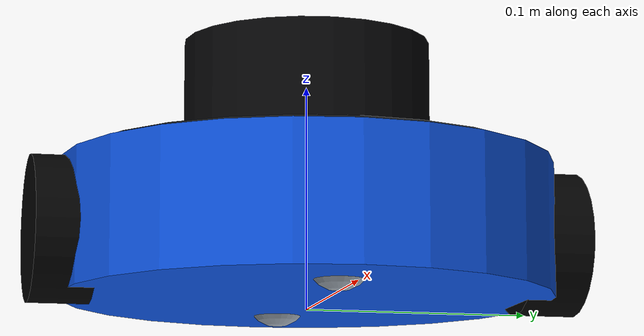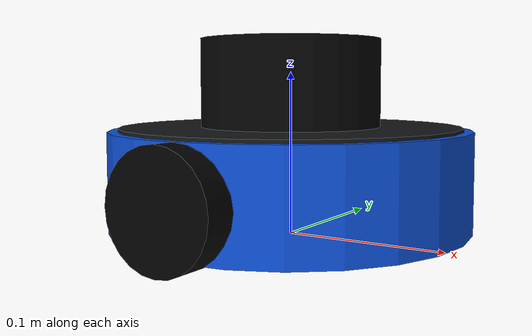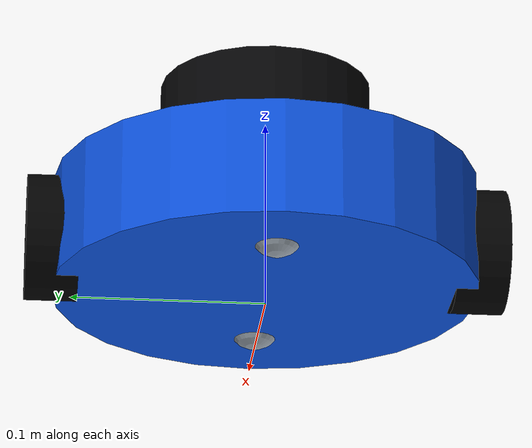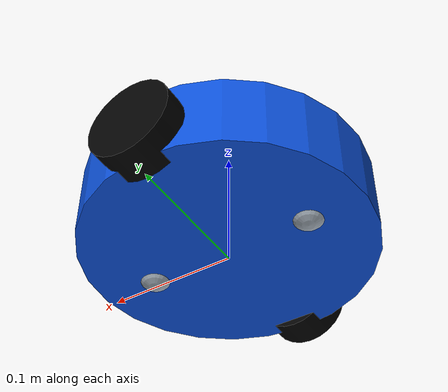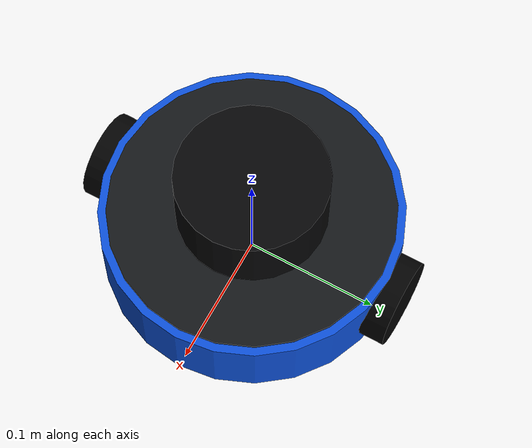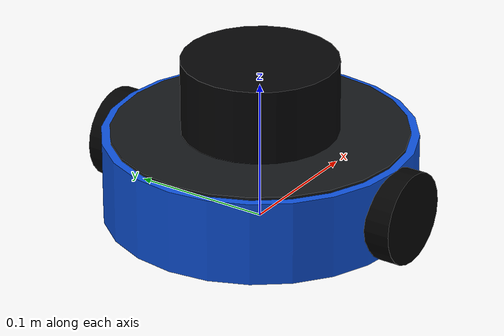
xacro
<?xml version="1.0"?>
<robot name="$(arg robot_name)" xmlns:xacro="http://www.ros.org/wiki/xacro">
  <xacro:arg name="robot_name" default="predictive_nav_robot"/>
  <xacro:arg name="robot_color" default="predictive_nav_blue"/>
  <xacro:arg name="use_gazebo_plugins" default="false"/>

  <xacro:arg name="base_radius" default="0.110"/>
  <xacro:arg name="base_height" default="0.060"/> <!-- PROVISIONAL_DESIGN_VALUE -->
  <xacro:arg name="base_ground_clearance" default="0.005"/> <!-- PROVISIONAL_DESIGN_VALUE -->
  <xacro:arg name="wheel_radius" default="0.0325"/>
  <xacro:arg name="wheel_width" default="0.027"/> <!-- REAL_ROBOT_CALIBRATION; provisional design value -->
  <xacro:arg name="wheel_separation" default="0.220"/> <!-- REAL_ROBOT_CALIBRATION; provisional design value -->
  <xacro:arg name="wheel_x" default="0.0"/> <!-- REAL_ROBOT_CALIBRATION; provisional design value -->
  <xacro:arg name="caster_ball_radius" default="0.015"/> <!-- REAL_ROBOT_CALIBRATION; provisional design value -->
  <xacro:arg name="caster_1_x" default="0.065"/> <!-- REAL_ROBOT_CALIBRATION; provisional design value -->
  <xacro:arg name="caster_1_y" default="0.0"/> <!-- REAL_ROBOT_CALIBRATION; provisional design value -->
  <xacro:arg name="caster_2_x" default="-0.065"/> <!-- REAL_ROBOT_CALIBRATION; provisional design value -->
  <xacro:arg name="caster_2_y" default="0.0"/> <!-- REAL_ROBOT_CALIBRATION; provisional design value -->
  <xacro:arg name="lidar_x" default="0.0"/> <!-- REAL_ROBOT_CALIBRATION; relative to base_link -->
  <xacro:arg name="lidar_y" default="0.0"/> <!-- REAL_ROBOT_CALIBRATION; provisional design value -->
  <!-- Center of the simple 55 mm-high LiDAR visual: its bottom rests on the deck. -->
  <xacro:arg name="lidar_z" default="0.060"/> <!-- REAL_ROBOT_CALIBRATION; provisional design value -->
  <xacro:arg name="lidar_roll" default="0.0"/> <!-- REAL_ROBOT_CALIBRATION -->
  <xacro:arg name="lidar_pitch" default="0.0"/> <!-- REAL_ROBOT_CALIBRATION -->
  <xacro:arg name="lidar_yaw" default="0.0"/> <!-- REAL_ROBOT_CALIBRATION -->
  <xacro:arg name="imu_x" default="0.0"/> <!-- REAL_ROBOT_CALIBRATION; relative to base_link -->
  <xacro:arg name="imu_y" default="0.0"/> <!-- REAL_ROBOT_CALIBRATION; provisional design value -->
  <!-- Placeholder IMU visual also rests on the deck; final IMU pose is TBD. -->
  <xacro:arg name="imu_z" default="0.045"/> <!-- REAL_ROBOT_CALIBRATION; provisional design value -->
  <xacro:arg name="imu_roll" default="0.0"/> <!-- REAL_ROBOT_CALIBRATION -->
  <xacro:arg name="imu_pitch" default="0.0"/> <!-- REAL_ROBOT_CALIBRATION -->
  <xacro:arg name="imu_yaw" default="0.0"/> <!-- REAL_ROBOT_CALIBRATION -->

  <xacro:include filename="$(find predictive_nav_description)/urdf/materials.xacro"/>
  <xacro:include filename="$(find predictive_nav_description)/urdf/inertials.xacro"/>
  <xacro:include filename="$(find predictive_nav_description)/urdf/base.xacro"/>
  <xacro:include filename="$(find predictive_nav_description)/urdf/wheels.xacro"/>
  <xacro:include filename="$(find predictive_nav_description)/urdf/sensors.xacro"/>
  <xacro:include filename="$(find predictive_nav_description)/urdf/gazebo_plugins.xacro"/>

  <xacro:predictive_nav_base
    robot_color="$(arg robot_color)"
    base_radius="$(arg base_radius)"
    base_height="$(arg base_height)"
    base_ground_clearance="$(arg base_ground_clearance)"
    base_link_z="$(arg wheel_radius)"/>
  <xacro:predictive_nav_wheels
    wheel_radius="$(arg wheel_radius)"
    wheel_width="$(arg wheel_width)"
    wheel_separation="$(arg wheel_separation)"
    wheel_x="$(arg wheel_x)"
    caster_ball_radius="$(arg caster_ball_radius)"
    caster_1_x="$(arg caster_1_x)" caster_1_y="$(arg caster_1_y)"
    caster_2_x="$(arg caster_2_x)" caster_2_y="$(arg caster_2_y)"/>
  <xacro:predictive_nav_lidar
    x="$(arg lidar_x)" y="$(arg lidar_y)" z="$(arg lidar_z)"
    roll="$(arg lidar_roll)" pitch="$(arg lidar_pitch)" yaw="$(arg lidar_yaw)"/>
  <xacro:predictive_nav_imu
    x="$(arg imu_x)" y="$(arg imu_y)" z="$(arg imu_z)"
    roll="$(arg imu_roll)" pitch="$(arg imu_pitch)" yaw="$(arg imu_yaw)"/>

  <xacro:if value="$(arg use_gazebo_plugins)">
    <xacro:predictive_nav_gazebo_plugins
      topic_prefix="$(arg robot_name)"
      wheel_separation="$(arg wheel_separation)"
      wheel_radius="$(arg wheel_radius)"/>
  </xacro:if>
</robot>

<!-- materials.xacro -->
<robot xmlns:xacro="http://www.ros.org/wiki/xacro">
  <material name="predictive_nav_dark_grey">
    <color rgba="0.08 0.09 0.10 1.0"/>
  </material>

  <material name="predictive_nav_light_grey">
    <color rgba="0.62 0.66 0.70 1.0"/>
  </material>

  <material name="predictive_nav_black">
    <color rgba="0.01 0.01 0.01 1.0"/>
  </material>

  <material name="predictive_nav_white">
    <color rgba="0.92 0.94 0.96 1.0"/>
  </material>

  <material name="predictive_nav_blue">
    <color rgba="0.05 0.32 0.86 1.0"/>
  </material>

  <material name="predictive_nav_orange">
    <color rgba="0.95 0.42 0.08 1.0"/>
  </material>

  <material name="predictive_nav_green">
    <color rgba="0.05 0.65 0.36 1.0"/>
  </material>

  <material name="predictive_nav_lidar">
    <color rgba="0.02 0.02 0.025 1.0"/>
  </material>

  <material name="predictive_nav_glass">
    <color rgba="0.1 0.18 0.25 0.55"/>
  </material>
</robot>

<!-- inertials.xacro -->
<robot xmlns:xacro="http://www.ros.org/wiki/xacro">
  <xacro:macro name="predictive_nav_box_inertia" params="mass x y z">
    <inertial>
      <mass value="${mass}"/>
      <inertia
        ixx="${mass * (y * y + z * z) / 12.0}"
        ixy="0.0"
        ixz="0.0"
        iyy="${mass * (x * x + z * z) / 12.0}"
        iyz="0.0"
        izz="${mass * (x * x + y * y) / 12.0}"/>
    </inertial>
  </xacro:macro>

  <xacro:macro name="predictive_nav_cylinder_inertia_z" params="mass radius length">
    <inertial>
      <mass value="${mass}"/>
      <inertia
        ixx="${mass * (3.0 * radius * radius + length * length) / 12.0}"
        ixy="0.0"
        ixz="0.0"
        iyy="${mass * (3.0 * radius * radius + length * length) / 12.0}"
        iyz="0.0"
        izz="${mass * radius * radius / 2.0}"/>
    </inertial>
  </xacro:macro>

  <xacro:macro name="predictive_nav_cylinder_inertia_x" params="mass radius length">
    <inertial>
      <mass value="${mass}"/>
      <inertia
        ixx="${mass * radius * radius / 2.0}"
        ixy="0.0"
        ixz="0.0"
        iyy="${mass * (3.0 * radius * radius + length * length) / 12.0}"
        iyz="0.0"
        izz="${mass * (3.0 * radius * radius + length * length) / 12.0}"/>
    </inertial>
  </xacro:macro>
</robot>

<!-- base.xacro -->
<robot xmlns:xacro="http://www.ros.org/wiki/xacro">
  <xacro:macro name="predictive_nav_base" params="robot_color:=predictive_nav_blue base_radius:=0.110 base_height:=0.060 base_ground_clearance:=0.005 base_link_z:=0.0325">
    <link name="base_footprint"/>

    <joint name="base_footprint_joint" type="fixed">
      <parent link="base_footprint"/>
      <child link="base_link"/>
      <!-- base_footprint is the ground-plane centre; base_link is the wheel axle plane. -->
      <origin xyz="0 0 ${base_link_z}" rpy="0 0 0"/>
    </joint>

    <link name="base_link">
      <visual>
        <origin xyz="0 0 ${base_ground_clearance + base_height / 2.0 - base_link_z}" rpy="0 0 0"/>
        <geometry>
          <cylinder radius="${base_radius}" length="${base_height}"/>
        </geometry>
        <material name="${robot_color}"/>
      </visual>
      <collision>
        <origin xyz="0 0 ${base_ground_clearance + base_height / 2.0 - base_link_z}" rpy="0 0 0"/>
        <geometry>
          <!-- Simple circular collision body: appropriate for Nav2/Gazebo, not a CAD model. -->
          <cylinder radius="${base_radius}" length="${base_height}"/>
        </geometry>
      </collision>
      <!-- PROVISIONAL_DESIGN_VALUE: update mass/inertia after the robot is weighed. -->
      <xacro:predictive_nav_cylinder_inertia_z mass="4.0" radius="${base_radius}" length="${base_height}"/>
    </link>

    <link name="top_deck_link">
      <visual>
        <origin xyz="0 0 0" rpy="0 0 0"/>
        <geometry>
          <cylinder radius="${base_radius - 0.006}" length="0.004"/>
        </geometry>
        <material name="predictive_nav_dark_grey"/>
      </visual>
      <!-- Deck/electronics are visual-only so they do not enlarge collision or Nav2 footprint. -->
      <xacro:predictive_nav_cylinder_inertia_z mass="0.15" radius="${base_radius - 0.006}" length="0.004"/>
    </link>

    <joint name="top_deck_joint" type="fixed">
      <parent link="base_link"/>
      <child link="top_deck_link"/>
      <origin xyz="0 0 ${base_ground_clearance + base_height - base_link_z}" rpy="0 0 0"/>
    </joint>
  </xacro:macro>
</robot>

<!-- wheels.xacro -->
<robot xmlns:xacro="http://www.ros.org/wiki/xacro">
  <xacro:macro name="predictive_nav_wheels" params="wheel_radius:=0.0325 wheel_width:=0.027 wheel_separation:=0.220 wheel_x:=0.0 caster_ball_radius:=0.015 caster_1_x:=0.065 caster_1_y:=0.0 caster_2_x:=-0.065 caster_2_y:=0.0">
    <link name="left_wheel_link">
      <visual>
        <origin xyz="0 0 0" rpy="1.57079632679 0 0"/>
        <geometry>
          <cylinder radius="${wheel_radius}" length="${wheel_width}"/>
        </geometry>
        <material name="predictive_nav_black"/>
      </visual>
      <collision>
        <origin xyz="0 0 0" rpy="1.57079632679 0 0"/>
        <geometry>
          <cylinder radius="${wheel_radius}" length="${wheel_width}"/>
        </geometry>
      </collision>
      <xacro:predictive_nav_cylinder_inertia_x mass="0.18" radius="${wheel_radius}" length="${wheel_width}"/>
    </link>

    <joint name="left_wheel_joint" type="continuous">
      <parent link="base_link"/>
      <child link="left_wheel_link"/>
      <origin xyz="${wheel_x} ${wheel_separation / 2.0} 0" rpy="0 0 0"/>
      <!-- ROS convention: +Y wheel axle, +X forward. -->
      <axis xyz="0 1 0"/>
    </joint>

    <link name="right_wheel_link">
      <visual>
        <origin xyz="0 0 0" rpy="1.57079632679 0 0"/>
        <geometry>
          <cylinder radius="${wheel_radius}" length="${wheel_width}"/>
        </geometry>
        <material name="predictive_nav_black"/>
      </visual>
      <collision>
        <origin xyz="0 0 0" rpy="1.57079632679 0 0"/>
        <geometry>
          <cylinder radius="${wheel_radius}" length="${wheel_width}"/>
        </geometry>
      </collision>
      <xacro:predictive_nav_cylinder_inertia_x mass="0.18" radius="${wheel_radius}" length="${wheel_width}"/>
    </link>

    <joint name="right_wheel_joint" type="continuous">
      <parent link="base_link"/>
      <child link="right_wheel_link"/>
      <origin xyz="${wheel_x} ${-wheel_separation / 2.0} 0" rpy="0 0 0"/>
      <axis xyz="0 1 0"/>
    </joint>

    <!-- Two passive ball casters.  Their size and mounting points are calibration items. -->
    <link name="front_caster_link">
      <visual>
        <origin xyz="0 0 0" rpy="0 0 0"/>
        <geometry>
          <sphere radius="${caster_ball_radius}"/>
        </geometry>
        <material name="predictive_nav_light_grey"/>
      </visual>
      <collision>
        <origin xyz="0 0 0" rpy="0 0 0"/>
        <geometry>
          <sphere radius="${caster_ball_radius}"/>
        </geometry>
      </collision>
      <xacro:predictive_nav_cylinder_inertia_z mass="0.05" radius="${caster_ball_radius}" length="${caster_ball_radius * 2.0}"/>
    </link>

    <joint name="front_caster_joint" type="fixed">
      <parent link="base_link"/>
      <child link="front_caster_link"/>
      <origin xyz="${caster_1_x} ${caster_1_y} ${caster_ball_radius - wheel_radius}" rpy="0 0 0"/>
    </joint>

    <link name="rear_caster_link">
      <visual>
        <origin xyz="0 0 0" rpy="0 0 0"/>
        <geometry>
          <sphere radius="${caster_ball_radius}"/>
        </geometry>
        <material name="predictive_nav_light_grey"/>
      </visual>
      <collision>
        <origin xyz="0 0 0" rpy="0 0 0"/>
        <geometry>
          <sphere radius="${caster_ball_radius}"/>
        </geometry>
      </collision>
      <xacro:predictive_nav_cylinder_inertia_z mass="0.05" radius="${caster_ball_radius}" length="${caster_ball_radius * 2.0}"/>
    </link>

    <joint name="rear_caster_joint" type="fixed">
      <parent link="base_link"/>
      <child link="rear_caster_link"/>
      <origin xyz="${caster_2_x} ${caster_2_y} ${caster_ball_radius - wheel_radius}" rpy="0 0 0"/>
    </joint>
  </xacro:macro>
</robot>

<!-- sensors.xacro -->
<robot xmlns:xacro="http://www.ros.org/wiki/xacro">
  <xacro:macro name="predictive_nav_lidar" params="x:=0.0 y:=0.0 z:=0.060 roll:=0.0 pitch:=0.0 yaw:=0.0">
    <link name="lidar_link">
      <visual>
        <origin xyz="0 0 0" rpy="0 0 0"/>
        <geometry>
          <cylinder radius="0.055" length="0.055"/>
        </geometry>
        <material name="predictive_nav_lidar"/>
      </visual>
      <collision>
        <origin xyz="0 0 0" rpy="0 0 0"/>
        <geometry>
          <cylinder radius="0.055" length="0.055"/>
        </geometry>
      </collision>
      <xacro:predictive_nav_cylinder_inertia_z mass="0.25" radius="0.055" length="0.055"/>
    </link>

    <joint name="lidar_joint" type="fixed">
      <!-- Pose is explicitly relative to base_link for later survey/calibration. -->
      <parent link="base_link"/>
      <child link="lidar_link"/>
      <origin xyz="${x} ${y} ${z}" rpy="${roll} ${pitch} ${yaw}"/>
    </joint>
  </xacro:macro>

  <xacro:macro name="predictive_nav_imu" params="x:=0.0 y:=0.0 z:=0.045 roll:=0.0 pitch:=0.0 yaw:=0.0">
    <link name="imu_link">
      <visual>
        <origin xyz="0 0 0" rpy="0 0 0"/>
        <geometry>
          <box size="0.05 0.04 0.02"/>
        </geometry>
        <material name="predictive_nav_black"/>
      </visual>
      <!-- Placeholder only: no IMU model/driver is implied and it has no collision. -->
      <xacro:predictive_nav_box_inertia mass="0.08" x="0.05" y="0.04" z="0.02"/>
    </link>

    <joint name="imu_joint" type="fixed">
      <parent link="base_link"/>
      <child link="imu_link"/>
      <origin xyz="${x} ${y} ${z}" rpy="${roll} ${pitch} ${yaw}"/>
    </joint>
  </xacro:macro>

</robot>
